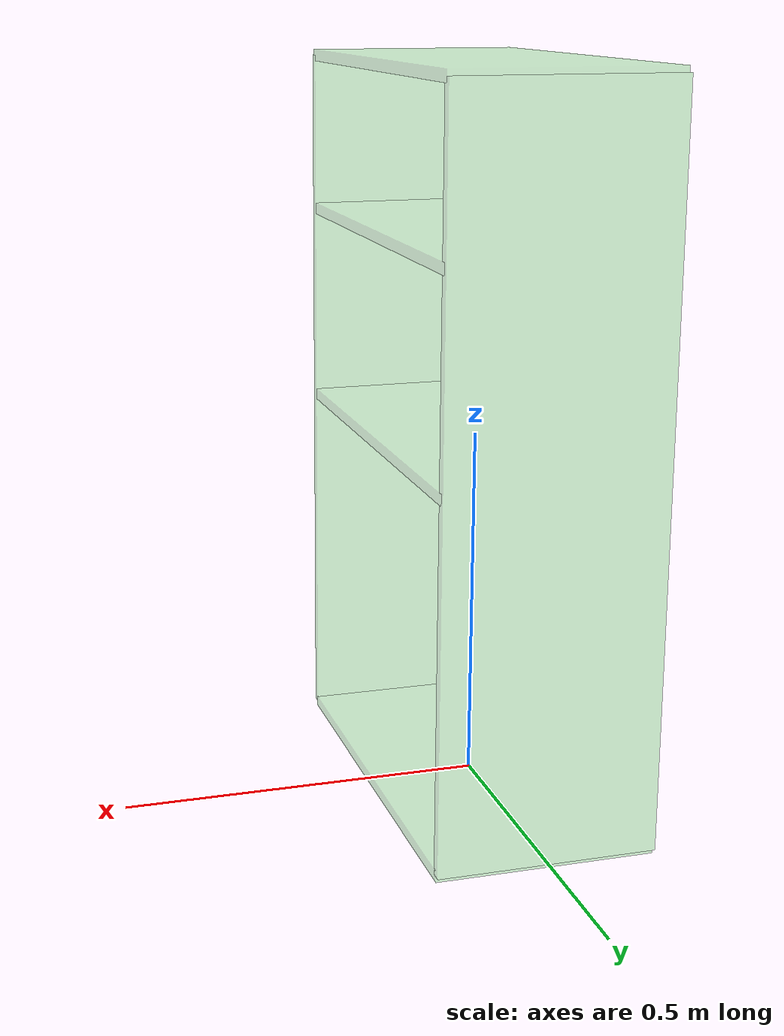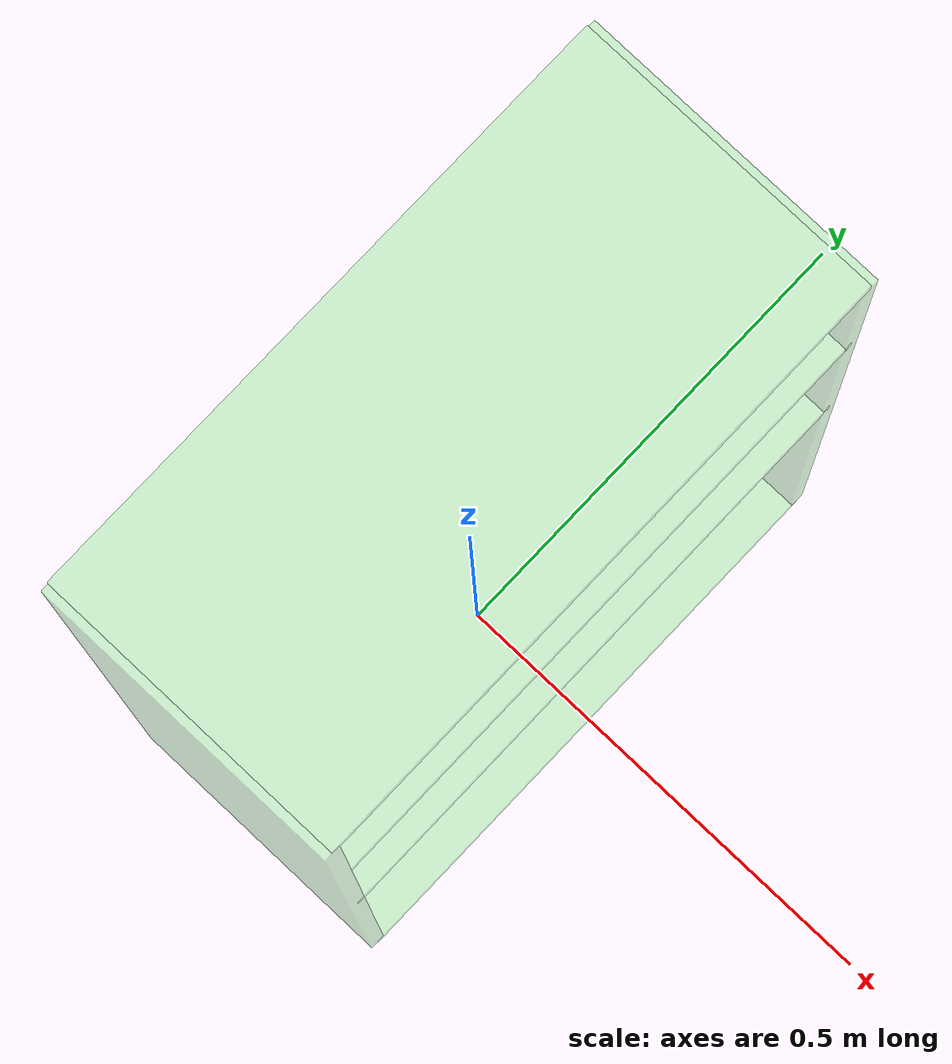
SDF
<?xml version="1.0"?>
<sdf version="1.7">
    <model name="shelves">
        <link name="bottom">
            <visual name="bottom">
                <pose>0 0 0 0 0 0</pose>
                <geometry>
                    <box>
                        <size>0.3 0.6 0.016</size>
                    </box>
                </geometry>
                <material>
                    <diffuse> 0.5 0.9 0.5 0.4 </diffuse>
                </material>
            </visual>
            <collision name="bottom">
                <pose> 0 0 0 0 0 0</pose>
                <geometry>
                    <box>
                        <size>0.3 0.6 0.016</size>
                    </box>
                </geometry>
            </collision>
            <inertial>
        <mass>1.000</mass>
      </inertial>
        </link>
        <link name="top">
            <visual name="top">
                <pose>0 0 1 0 0 0</pose>
                <geometry>
                    <box>
                        <size>0.3 0.6 0.016</size>
                    </box>
                </geometry>
                <material>
                    <diffuse> 0.5 0.9 0.5 0.4 </diffuse>
                </material>
            </visual>
            <collision name="top">
                <pose> 0 0 1 0 0 0</pose>
                <geometry>
                    <box>
                        <size>0.3 0.6 0.016</size>
                    </box>
                </geometry>
            </collision>
            <inertial>
        <mass>1.000</mass>
      </inertial>
        </link>
        <joint name="top_bottom_joint" type="fixed">
            <child>top</child>
            <parent>bottom</parent>
        </joint>
        <link name="right">
            <visual name="right">
                <pose>0 0.3 0.5 1.57 0 0</pose>
                <geometry>
                    <box>
                        <size>0.3 1 0.016</size>
                    </box>
                </geometry>
                <material>
                    <diffuse> 0.5 0.9 0.5 0.4 </diffuse>
                </material>
            </visual>
            <collision name="right">
                <pose>0 0.3 0.5 1.57 0 0</pose>
                <geometry>
                    <box>
                        <size>0.3 1 0.016</size>
                    </box>
                </geometry>
            </collision>
            <inertial>
        <mass>1.000</mass>
      </inertial>
        </link>
        <joint name="right_bottom_joint" type="fixed">
            <child>right</child>
            <parent>bottom</parent>
        </joint>
        <link name="left">
            <visual name="left">
                <pose>0 -0.3 0.5 1.57 0 0</pose>
                <geometry>
                    <box>
                        <size>0.3 1 0.016</size>
                    </box>
                </geometry>
                <material>
                    <diffuse> 0.5 0.9 0.5 0.4 </diffuse>
                </material>
            </visual>
            <collision name="left">
                <pose>0 -0.3 0.5 1.57 0 0</pose>
                <geometry>
                    <box>
                        <size>0.3 1 0.016</size>
                    </box>
                </geometry>
            </collision>
            <inertial>
        <mass>1.000</mass>
      </inertial>
        </link>
        <joint name="left_bottom_joint" type="fixed">
            <child>left</child>
            <parent>bottom</parent>
        </joint>
        <link name="shelf1">
            <visual name="shelf1">
                <pose>0 0 0.5 0 0 0</pose>
                <geometry>
                    <box>
                        <size>0.3 0.6 0.016</size>
                    </box>
                </geometry>
                <material>
                    <diffuse> 0.5 0.9 0.5 0.4 </diffuse>
                </material>
            </visual>
            <collision name="shelf1">
                <pose> 0 0 0.45 0 0 0</pose>
                <geometry>
                    <box>
                        <size>0.3 0.6 0.016</size>
                    </box>
                </geometry>
            </collision>
            <inertial>
        <mass>1.000</mass>
      </inertial>
        </link>
        <joint name="shelf1_bottom_joint" type="fixed">
            <child>shelf1</child>
            <parent>bottom</parent>
        </joint>
        <link name="shelf2">
            <visual name="shelf2">
                <pose>0 0 0.78 0 0 0</pose>
                <geometry>
                    <box>
                        <size>0.3 0.6 0.016</size>
                    </box>
                </geometry>
                <material>
                    <diffuse> 0.5 0.9 0.5 0.4 </diffuse>
                </material>
            </visual>
            <collision name="shelf2">
                <pose> 0 0 0.78 0 0 0</pose>
                <geometry>
                    <box>
                        <size>0.3 0.6 0.016</size>
                    </box>
                </geometry>
            </collision>
            <inertial>
        <mass>1.000</mass>
      </inertial>
        </link>
        <joint name="shelf2_bottom_joint" type="fixed">
            <child>shelf2</child>
            <parent>bottom</parent>
        </joint>
    </model>
</sdf>
